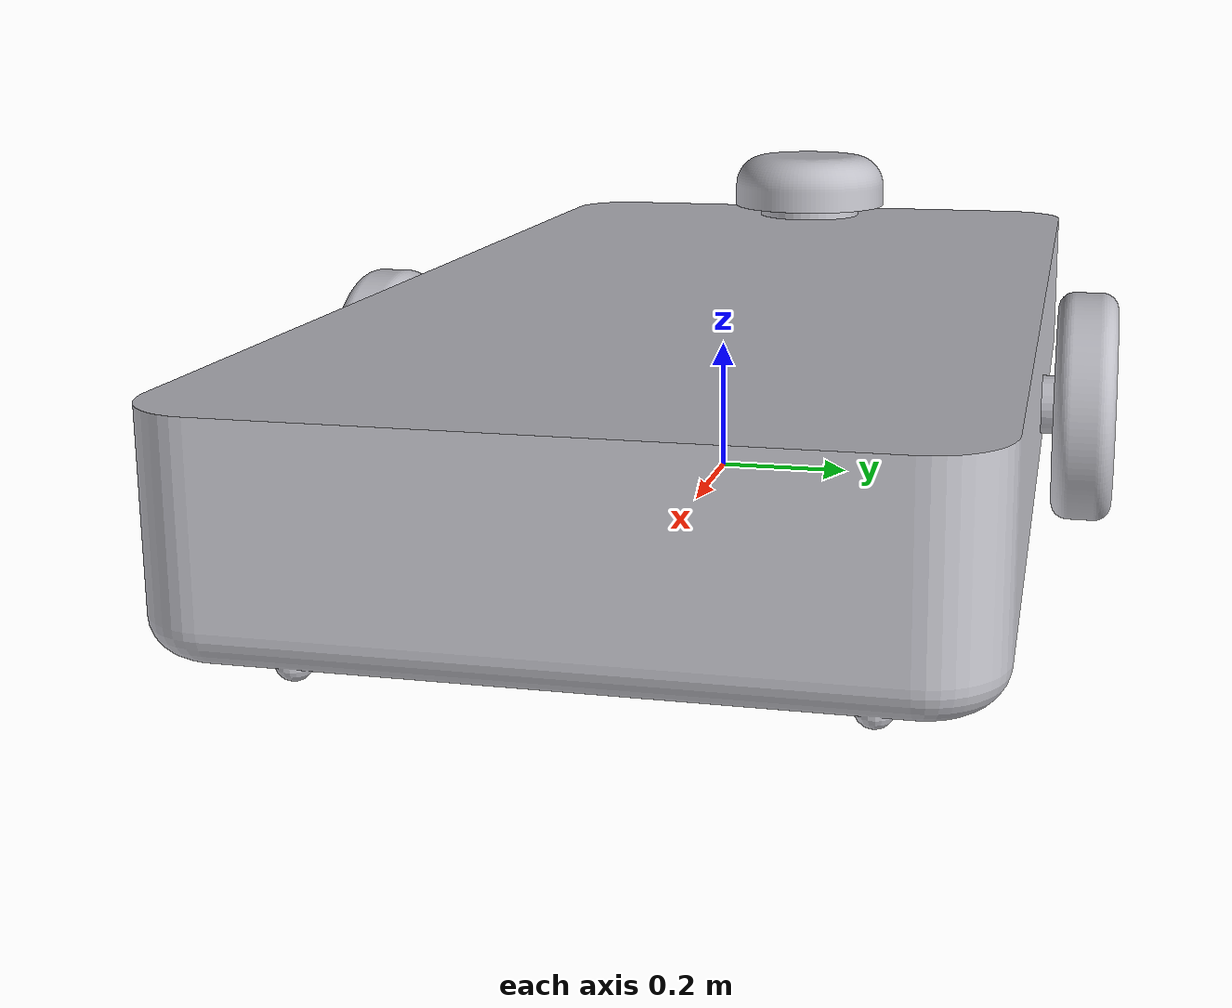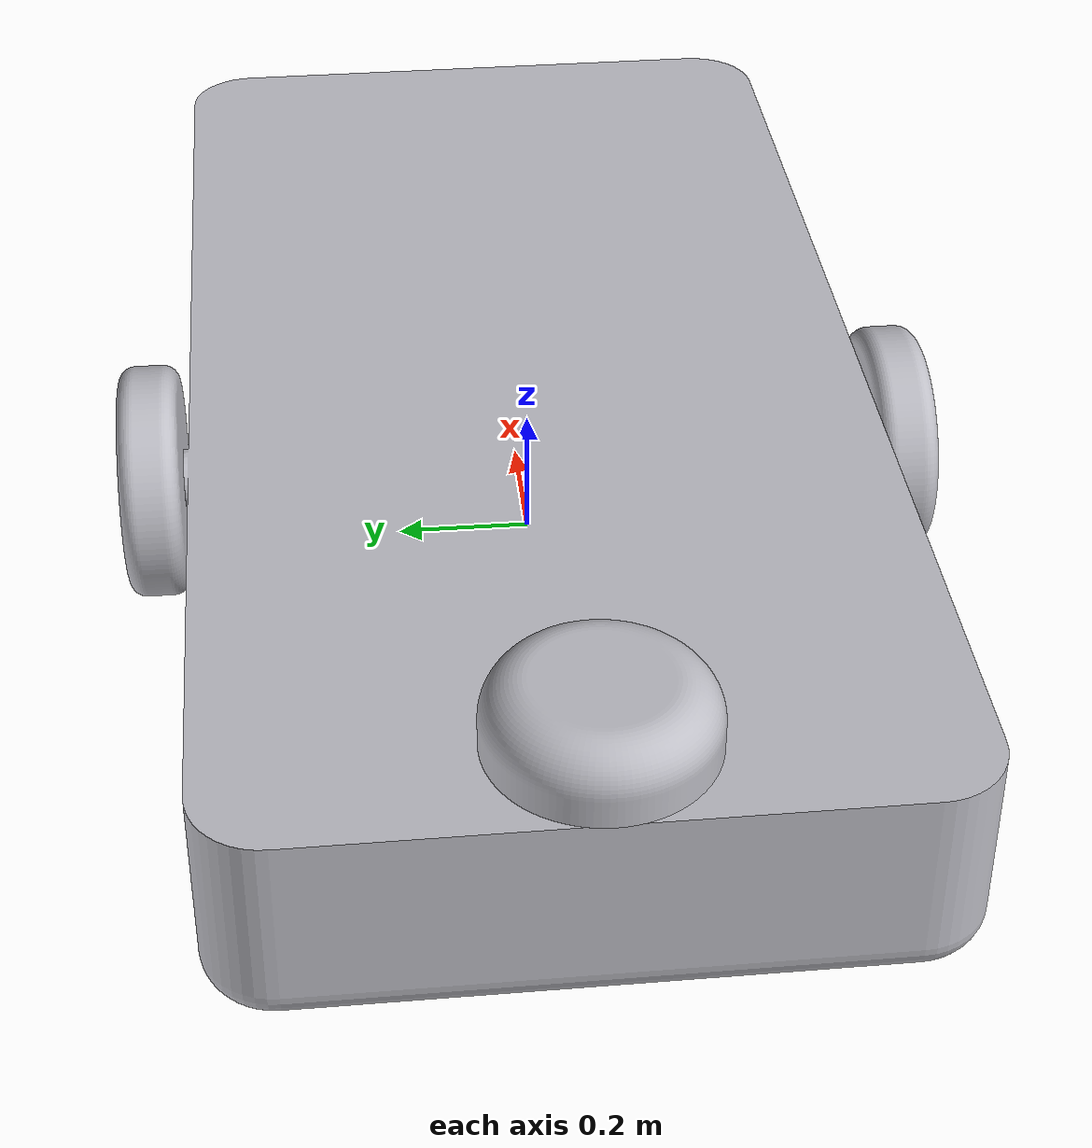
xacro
<?xml version="1.0" ?>
<robot name="final" xmlns:xacro="http://www.ros.org/wiki/xacro">

<xacro:include filename="$(find final_description)/urdf/materials.xacro" />
<xacro:include filename="$(find final_description)/urdf/final.trans" />
<xacro:include filename="$(find final_description)/urdf/final.gazebo" />
<link name="base_link">
  <inertial>
    <origin xyz="-0.0009230296926972403 0.004266981973136282 0.1507578535852258" rpy="0 0 0"/>
    <mass value="1608.1850243415279"/>
    <inertia ixx="144.202778" iyy="543.043688" izz="663.218296" ixy="-0.006334" iyz="0.000326" ixz="0.236379"/>
  </inertial>
  <visual>
    <origin xyz="0 0 0" rpy="0 0 0"/>
    <geometry>
      <mesh filename="package://final_description/meshes/base_link.stl" scale="0.001 0.001 0.001"/>
    </geometry>
    <material name="silver"/>
  </visual>
  <collision>
    <origin xyz="0 0 0" rpy="0 0 0"/>
    <geometry>
      <mesh filename="package://final_description/meshes/base_link.stl" scale="0.001 0.001 0.001"/>
    </geometry>
  </collision>
</link>

<link name="wheel_1_1">
  <inertial>
    <origin xyz="-3.475720032896333e-17 -0.044999596915523576 -4.163336342344337e-17" rpy="0 0 0"/>
    <mass value="7.787325235803775"/>
    <inertia ixx="0.062854" iyy="0.11567" izz="0.062854" ixy="0.0" iyz="0.0" ixz="0.0"/>
  </inertial>
  <visual>
    <origin xyz="-0.0 0.515726 -0.125" rpy="0 0 0"/>
    <geometry>
      <mesh filename="package://final_description/meshes/wheel_1_1.stl" scale="0.001 0.001 0.001"/>
    </geometry>
    <material name="silver"/>
  </visual>
  <collision>
    <origin xyz="-0.0 0.515726 -0.125" rpy="0 0 0"/>
    <geometry>
      <mesh filename="package://final_description/meshes/wheel_1_1.stl" scale="0.001 0.001 0.001"/>
    </geometry>
  </collision>
</link>

<link name="wheel_2_1">
  <inertial>
    <origin xyz="-3.475720032896333e-17 0.04500040308447639 -4.163336342344337e-17" rpy="0 0 0"/>
    <mass value="7.787325235803775"/>
    <inertia ixx="0.062854" iyy="0.11567" izz="0.062854" ixy="0.0" iyz="0.0" ixz="0.0"/>
  </inertial>
  <visual>
    <origin xyz="-0.0 -0.524274 -0.125" rpy="0 0 0"/>
    <geometry>
      <mesh filename="package://final_description/meshes/wheel_2_1.stl" scale="0.001 0.001 0.001"/>
    </geometry>
    <material name="silver"/>
  </visual>
  <collision>
    <origin xyz="-0.0 -0.524274 -0.125" rpy="0 0 0"/>
    <geometry>
      <mesh filename="package://final_description/meshes/wheel_2_1.stl" scale="0.001 0.001 0.001"/>
    </geometry>
  </collision>
</link>

<link name="LIDAR_1">
  <inertial>
    <origin xyz="1.1102230246251565e-16 -2.2717799450738198e-17 0.046267968882851174" rpy="0 0 0"/>
    <mass value="6.7898434333469915"/>
    <inertia ixx="0.040604" iyy="0.040604" izz="0.070919" ixy="-0.0" iyz="0.0" ixz="-0.0"/>
  </inertial>
  <visual>
    <origin xyz="0.875 -0.0 -0.32" rpy="0 0 0"/>
    <geometry>
      <mesh filename="package://final_description/meshes/LIDAR_1.stl" scale="0.001 0.001 0.001"/>
    </geometry>
    <material name="silver"/>
  </visual>
  <collision>
    <origin xyz="0.875 -0.0 -0.32" rpy="0 0 0"/>
    <geometry>
      <mesh filename="package://final_description/meshes/LIDAR_1.stl" scale="0.001 0.001 0.001"/>
    </geometry>
  </collision>
</link>

<joint name="Revolute 1" type="continuous">
  <origin xyz="0.0 -0.515726 0.125" rpy="0 0 0"/>
  <parent link="base_link"/>
  <child link="wheel_1_1"/>
  <axis xyz="0.0 -1.0 0.0"/>
</joint>

<joint name="Revolute 2" type="continuous">
  <origin xyz="0.0 0.524274 0.125" rpy="0 0 0"/>
  <parent link="base_link"/>
  <child link="wheel_2_1"/>
  <axis xyz="0.0 1.0 0.0"/>
</joint>

<joint name="Rigid 3" type="fixed">
  <origin xyz="-0.875 0.0 0.32" rpy="0 0 0"/>
  <parent link="base_link"/>
  <child link="LIDAR_1"/>
</joint>

</robot>

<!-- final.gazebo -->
<robot name="final" xmlns:xacro="http://www.ros.org/wiki/xacro" >

<xacro:property name="body_color" value="Gazebo/Silver" />

<gazebo>
  <plugin name="control" filename="libgazebo_ros_control.so"/>
</gazebo>
<gazebo reference="base_link">
  <material>${body_color}</material>
  <mu1>0.2</mu1>
  <mu2>0.2</mu2>
  <selfCollide>true</selfCollide>
  <gravity>true</gravity>
</gazebo>

<gazebo reference="wheel_1_1">
  <material>${body_color}</material>
  <mu1>0.2</mu1>
  <mu2>0.2</mu2>
  <selfCollide>true</selfCollide>
</gazebo>

<gazebo reference="wheel_2_1">
  <material>${body_color}</material>
  <mu1>0.2</mu1>
  <mu2>0.2</mu2>
  <selfCollide>true</selfCollide>
</gazebo>

<gazebo reference="LIDAR_1">
  <material>${body_color}</material>
  <mu1>0.2</mu1>
  <mu2>0.2</mu2>
  <selfCollide>true</selfCollide>
</gazebo>

</robot>
